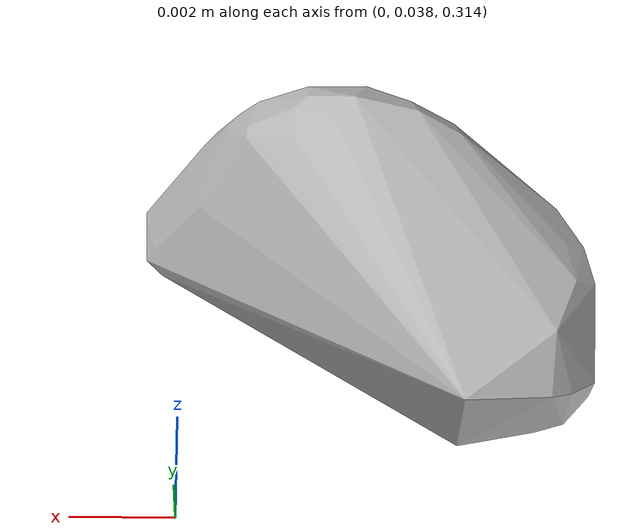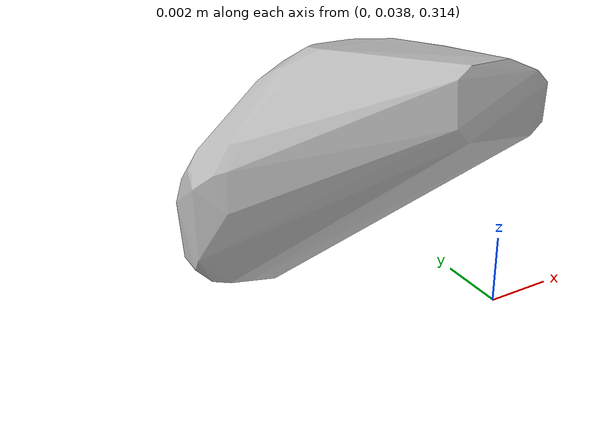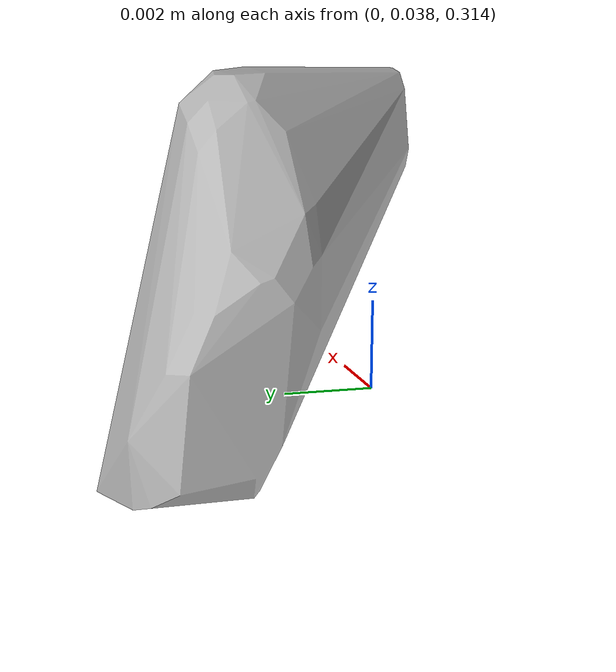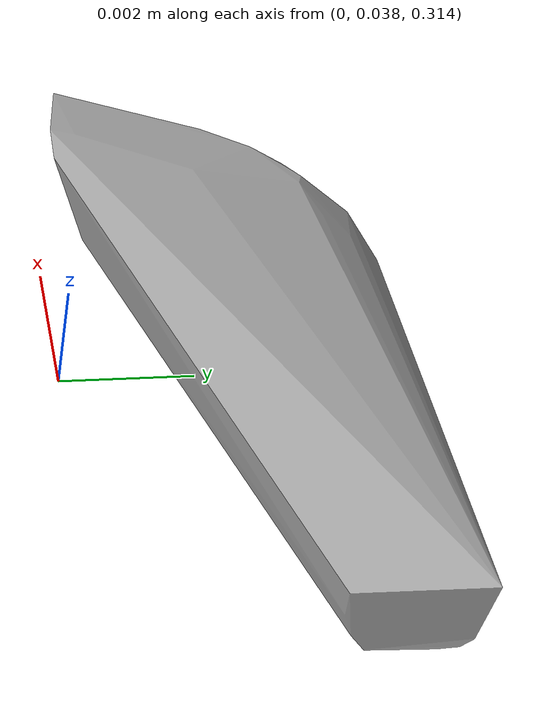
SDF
<?xml version="1.0"?>
<sdf version="1.7">
  <model name="vascular_partexport055">
    <link name="vascular_partexport055_body">
      <visual name="vascular_partexport055_visual">
        <geometry>
          <mesh>
            <uri>vascular_partexport055.obj</uri>
          </mesh>
        </geometry>
      </visual>
      <collision name="vascular_partexport055_collision">
        <geometry>
          <mesh>
            <uri>vascular_partexport055.obj</uri>
          </mesh>
        </geometry>
      </collision>
    </link>
    <frame name="vascular_partexport055_center">
      <pose relative_to="vascular_partexport055_body">0 0 0 0 0 0</pose>
    </frame>
  </model>
</sdf>
